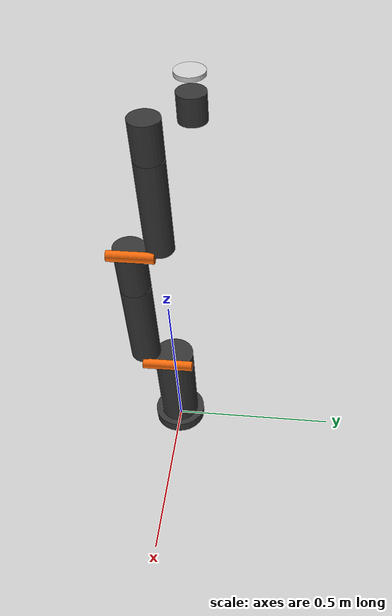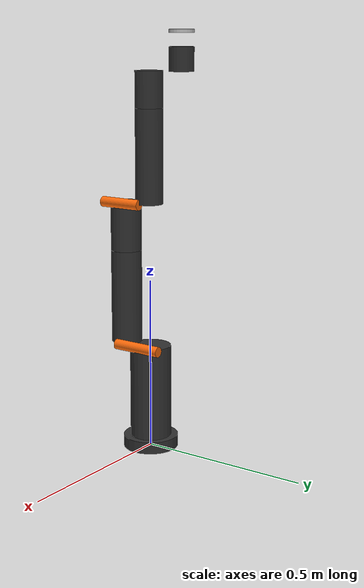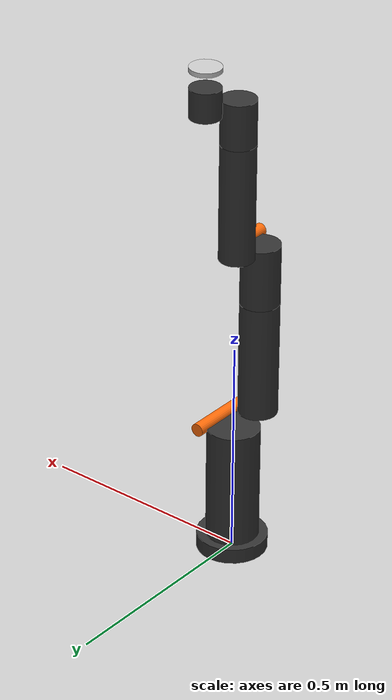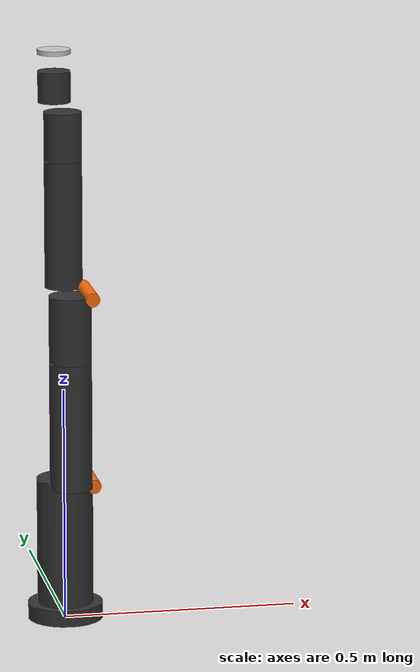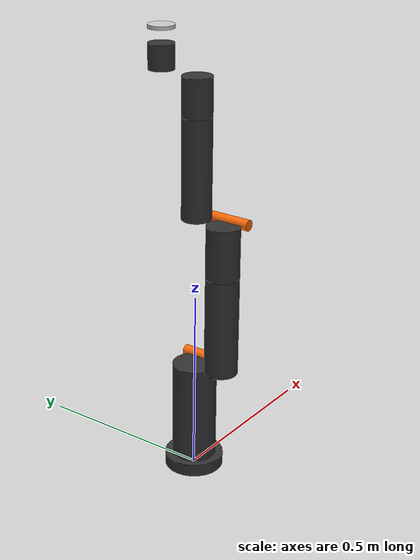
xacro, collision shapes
<?xml version="1.0"?>
<robot xmlns:xacro="http://wiki.ros.org/xacro" name="kr810">

  <!-- Import kr810 macro -->
  <xacro:include filename="$(find kr_robot_description)/kr810/urdf/kr810_description.urdf.xacro"/>
  <xacro:kr810_description/>

  <!-- Import r6bot ros2_control description -->
  <xacro:include filename="$(find kr_robot_driver)/ros2_control/kr810.ros2_control.xacro" />
  <xacro:kr810_ros2_control name="kr810"/>

</robot>

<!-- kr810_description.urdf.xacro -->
<robot name="kr2_robot_a810" model="a810" model-revision="051020-0" mechanical-revision="5" features="TIO" xmlns:xacro="http://www.ros.org/wiki/xacro">

  <xacro:macro name="kr810_description">

  <!-- materials -->

  <material name="gray">
    <color rgba="0.5 0.5 0.5 1.0"/>
  </material>

  <material name="dark_gray">
    <color rgba="0.3 0.3 0.3 1.0"/>
  </material>

  <material name="light_gray">
    <color rgba="0.7 0.7 0.7 1.0"/>
  </material>

  <material name="black">
    <color rgba="0.1 0.1 0.1 1.0"/>
  </material>

  <material name="orange">
    <color rgba="${255/255} ${108/255} ${10/255} 1.0"/>
  </material>

  <!-- globals -->
  <xacro:property name="joints_damping" value="0.1" />

  <!-- links -->

  <!-- all dimensions should be input as measured in the drawing in mm and
       converted to real dimensions by multiplying with the scale property -->
  <xacro:property name="scale" value="0.001" />

  <xacro:property name="pi_per_deg" value="${pi / 180.0}" />

  <xacro:property name="mass_multiplier" value="1.0" />

  <xacro:macro name="cylinder_inertia" params="mass radius length">
      <inertia ixx="0.003"
               ixy="0.0"
               ixz="0.0"
               iyy="0.003"
               iyz="0.0"
               izz="0.003"/>

  </xacro:macro>

  <xacro:macro name="visual_and_collision" params="xyz material rpy *geometry">
      <visual>
        <origin rpy="${rpy}" xyz="${xyz}" />
        <geometry>
          <xacro:insert_block name="geometry" />
        </geometry>
        <material name="${material}" />
      </visual>
      <collision>
        <origin rpy="${rpy}" xyz="${xyz}" />
        <geometry>
          <xacro:insert_block name="geometry" />
        </geometry>
      </collision>
  </xacro:macro>

  <link name="world"/>

  <link name="base">

    <xacro:property name="base_outer_radius" value="${ 80 * scale}" />
    <xacro:property name="base_inner_radius" value="${ 60 * scale}" />
    <xacro:property name="base_outer_height" value="${ 20 * scale}" />
    <xacro:property name="base_inner_height" value="${ 15 * scale}" />

    <xacro:property name="base_mass"         value="0.6" />
    <inertial>
      <origin rpy="0 0 0" xyz="0 0 0"/>
      <mass value="${base_mass*mass_multiplier}"/>
      <xacro:cylinder_inertia mass="${base_mass}"
                              radius="${base_outer_radius}"
                              length="${base_inner_height+base_outer_height}" />
    </inertial>

    <visual>
        <origin xyz="0 0 0" rpy="0 0 0" />
        <geometry>
          <mesh filename="package://kr_robot_description/kr810/meshes/a810/a810_Base.stl" scale="0.001 0.001 0.001"/>
        </geometry>
        <material name="">
          <color rgba="0.2 0.2 0.2 1" />
        </material>
    </visual>

    <collision>
        <origin xyz="0 0 ${(base_outer_height + base_inner_height)/2}" rpy="0 0 0" />
        <geometry>
          <cylinder length="${base_outer_height + base_inner_height}" radius="${base_outer_radius}"/>
        </geometry>
    </collision>

  </link>

  <link name="link1">

    <xacro:property name="link1_radius" value="${ 60 * scale}" />
    <xacro:property name="link1_length" value="${ 308.7 * scale - 35 * scale}" />
    <xacro:property name="link1_hinge_length"  value="${  130   * scale}"   />
    <xacro:property name="link1_hinge_radius"  value="${  57.5 * scale}" />

    <xacro:property name="link1_mass"   value="4.58" />

    <inertial>
      <origin rpy="0 0 0" xyz="0 0 ${link1_length/2}"/>
      <mass value="${link1_mass*mass_multiplier}"/>
            <xacro:cylinder_inertia mass="${link1_mass}"
                                    radius="${link1_radius}"
                                    length="${link1_length}" />
    </inertial>

    <visual>
        <origin xyz="0 0 0.169" rpy="0 0 0" />
        <geometry>
          <mesh filename="package://kr_robot_description/kr810/meshes/a810/a810_Link2.stl" scale="0.001 0.001 0.001"/>
        </geometry>
        <material name="">
          <color rgba="0.2 0.2 0.2 1" />
        </material>
    </visual>

    <collision>
        <origin xyz="0 0 ${link1_length/2}" rpy="0 0 0" />
        <geometry>
          <cylinder length="${link1_length}" radius="${link1_radius}"/>
        </geometry>
    </collision>

  </link>

  <link name="linkJ2">

    <xacro:property name="cylinderJ2_radius"   value="${15 * scale}"   />
    <xacro:property name="cylinderJ2_height"   value="${120 * scale}"   />
    <xacro:property name="linkJ2_mass"         value="6.1"   />

    <xacro:visual_and_collision rpy="${pi/2} 0 0"
                                xyz="0 ${-10 * scale} 0"
                                material="orange">
      <cylinder length="${cylinderJ2_height * 1.25}" radius="${cylinderJ2_radius}"/>
    </xacro:visual_and_collision>

    <inertial>
      <origin rpy="0 0 0" xyz="0 0 0"/>
      <mass value="${linkJ2_mass*mass_multiplier}"/>
      <xacro:cylinder_inertia mass="${linkJ2_mass}"
                              radius="${cylinderJ2_radius}"
                              length="${cylinderJ2_height}" />
    </inertial>

  </link>

  <link name="link2">

    <xacro:property name="link2_radius"   value="${ 45.0 * scale}"   />
    <xacro:property name="link2_length"   value="${ 274.0 * scale}"   />

    <xacro:property name="link2_mass"     value="0.43"   />

    <inertial>
      <origin rpy="0 0 0" xyz="0 0 ${ 175.0 * scale }"/>
      <mass value="${link2_mass*mass_multiplier}"/>
      <xacro:cylinder_inertia mass="${link2_mass}"
                              radius="${link2_radius}"
                              length="${link2_length}" />
    </inertial>

    <visual>
        <origin xyz="0.049 0 0" rpy="-${pi/2} 0 -${pi/2}" />
        <geometry>
          <mesh filename="package://kr_robot_description/kr810/meshes/a810/a810_Link3.stl" scale="0.001 0.001 0.001"/>
        </geometry>
        <material name="">
          <color rgba="0.2 0.2 0.2 1" />
        </material>
    </visual>

    <collision>
        <origin xyz="0 0 ${link2_length/2}" rpy="0 0 0" />
        <geometry>
          <cylinder length="${link2_length}" radius="${link2_radius}"/>
        </geometry>
    </collision>

  </link>

  <link name="link3">

    <xacro:property name="link3_radius"        value="${  45.0 * scale}" />
    <xacro:property name="link3_length"        value="${ 142.9 * scale}" />
    <xacro:property name="link3_hinge_length"  value="${ 120.0 * scale}" />
    <xacro:property name="link3_hinge_radius"  value="${  45.0 * scale}" />
    <xacro:property name="link3_hinge_yoffset" value="${   6.5 * scale}" />

    <xacro:property name="link3_mass"     value="2.9" />

    <inertial>
      <origin rpy="0 0 0" xyz="0 0 0"/>
      <mass value="${link3_mass*mass_multiplier}"/>
      <xacro:cylinder_inertia mass="${link3_mass}"
                              radius="${link3_radius}"
                              length="${link3_length}" />
    </inertial>

    <visual>
        <origin xyz="-0.05 -0.0 0.315" rpy="${pi/2} 0 -${pi/2}" />
        <geometry>
          <mesh filename="package://kr_robot_description/kr810/meshes/a810/a810_Link4.stl" scale="0.001 0.001 0.001"/>
        </geometry>
        <material name="">
          <color rgba="0.2 0.2 0.2 1" />
        </material>
    </visual>

    <collision>
        <origin xyz="0 0 ${link3_length/2}" rpy="0 0 0" />
        <geometry>
          <cylinder length="${link3_length}" radius="${link3_radius}"/>
        </geometry>
    </collision>

  </link>

  <link name="linkJ4">

    <xacro:property name="cylinderJ4_radius"   value="${15.0 * scale}"   />
    <xacro:property name="cylinderJ4_height"   value="${100 * scale}"   />
    <xacro:property name="linkJ4_mass"         value="3.8"   />

    <xacro:visual_and_collision rpy="${pi/2} 0 0"
                                xyz="0 ${13 * scale} 0"
                                material="orange">
      <cylinder length="${cylinderJ4_height * 1.29}" radius="${cylinderJ4_radius}"/>
    </xacro:visual_and_collision>

    <inertial>
      <origin rpy="0 0 0" xyz="0 ${6.5 * scale} 0"/>
      <mass value="${linkJ4_mass*mass_multiplier}"/>
      <xacro:cylinder_inertia mass="${linkJ4_mass}"
                              radius="${cylinderJ4_radius}"
                              length="${cylinderJ4_height}" />
    </inertial>

  </link>

  <link name="link4">

    <xacro:property name="link4_radius"   value="${  40.0 * scale}" />
    <xacro:property name="link4_length"   value="${ 271.0 * scale}" />

    <xacro:property name="link4_mass"     value="0.33" />

    <inertial>
      <origin rpy="0 0 0" xyz="0 0 ${ 168.0 * scale}"/>
      <mass value="${link4_mass*mass_multiplier}"/>
      <xacro:cylinder_inertia mass="${link4_mass}"
                              radius="${link4_radius}"
                              length="${link4_length}" />
    </inertial>

    <visual>
        <origin xyz="0.04 0.0005 0.0" rpy="-${pi/2} 0 ${pi/2}" />
        <geometry>
          <mesh filename="package://kr_robot_description/kr810/meshes/a810/a810_Link5.stl" scale="0.001 0.001 0.001"/>
        </geometry>
        <material name="">
          <color rgba="0.2 0.2 0.2 1" />
        </material>
    </visual>

    <collision>
        <origin xyz="0 0 ${link4_length/2}" rpy="0 0 0" />
        <geometry>
          <cylinder length="${link4_length}" radius="${link4_radius}"/>
        </geometry>
    </collision>

  </link>

  <link name="link5">

    <xacro:property name="link5_radius"   value="${  40.0 * scale}" />
    <xacro:property name="link5_length"   value="${ 103.5 * scale}" />

    <xacro:property name="link5_mass"     value="1.7" />

    <inertial>
      <origin rpy="0 0 0" xyz="0 0 0"/>
      <mass value="${link5_mass*mass_multiplier}"/>
      <xacro:cylinder_inertia mass="${link5_mass}"
                              radius="${link5_radius}"
                              length="${link5_length}" />
    </inertial>

    <visual>
        <origin xyz="0.0 0.002 0.1035" rpy="0 0 -${pi/2}" />
        <geometry>
          <mesh filename="package://kr_robot_description/kr810/meshes/a810/a810_Link6.stl" scale="0.001 0.001 0.001"/>
        </geometry>
        <material name="">
          <color rgba="0.2 0.2 0.2 1" />
        </material>
    </visual>

    <collision>
        <origin xyz="0 0 ${link5_length/2}" rpy="0 0 0" />
        <geometry>
          <cylinder length="${link5_length}" radius="${link5_radius}"/>
        </geometry>
    </collision>

  </link>

  <link name="linkJ6">

    <xacro:property name="cylinderJ6_radius"   value="${ 15.0 * scale}"   />
    <xacro:property name="cylinderJ6_height"   value="${ 110.0 * scale}"  />
    <xacro:property name="linkJ6_mass"         value="1.8"   />
    <inertial>
      <origin rpy="0 0 0" xyz="0 ${4.0 * scale} 0"/>
      <mass value="${linkJ6_mass*mass_multiplier}"/>
      <xacro:cylinder_inertia mass="${linkJ6_mass}"
                              radius="${cylinderJ6_radius}"
                              length="${cylinderJ6_height}" />
    </inertial>

  </link>

  <link name="link6">
    <xacro:property name="link6_radius"   value="${ 35.0 * scale}" />
    <xacro:property name="link6_length"   value="${ 66.5 * scale}" />
    <xacro:property name="link6_mass"     value="1.8" />
    <inertial>
      <origin rpy="0 0 0" xyz="0 0 ${4.0 * scale}"/>
      <mass value="${link6_mass*mass_multiplier}"/>
      <xacro:cylinder_inertia mass="${link6_mass}"
                              radius="${link6_radius}"
                              length="${link6_length}" />
    </inertial>
    <visual>
        <origin xyz="0.0 0.0 0.0" rpy="0 0 0" />
        <geometry>
          <mesh filename="package://kr_robot_description/kr810/meshes/a810/a810_Link7.stl" scale="0.001 0.001 0.001"/>
        </geometry>
        <material name="">
          <color rgba="0.2 0.2 0.2 1" />
        </material>
    </visual>

    <collision>
        <origin xyz="0 0 ${link6_length/2}" rpy="0 0 0" />
        <geometry>
          <cylinder length="${link6_length}" radius="${link6_radius}"/>
        </geometry>
    </collision>
  </link>

  <link name="end_effector">

    <xacro:property name="end_effector_outer_radius" value="${ 35.5 * scale}" />
    <xacro:property name="end_effector_outer_length" value="${ 5.0 * scale}" />
    <xacro:property name="end_effector_inner_radius" value="${ 22.5 * scale}" />
    <xacro:property name="end_effector_inner_length" value="${ 5.0   * scale}" />

    <xacro:property name="end_effector_mass"         value="0.56"   />
    <visual>
        <origin xyz="0.0 -0.0 0.0" rpy="0 0 0" />
        <geometry>
          <mesh filename="package://kr_robot_description/kr810/meshes/a810/a810_ToolIO.stl" scale="0.001 0.001 0.001"/>
        </geometry>
        <material name="">
          <color rgba="0.8 0.8 0.8 1" />
        </material>
    </visual>

    <collision>
        <origin xyz="0 0 0" rpy="0 0 0" />
        <geometry>
          <cylinder length="${end_effector_outer_length + end_effector_inner_length}" radius="${end_effector_outer_radius}"/>
        </geometry>
    </collision>

    <inertial>
      <origin rpy="0 0 0" xyz="0 0 ${-19.7 * scale}"/>
      <mass value="${end_effector_mass*mass_multiplier}"/>
      <xacro:cylinder_inertia mass="${end_effector_mass}"
                              radius="${end_effector_outer_radius}"
                              length="${end_effector_outer_length + end_effector_inner_length}" />
    </inertial>
  </link>

  <!-- joints -->
  <joint name="dummy" type="fixed">
    <parent link="world"/>
    <child link="base"/>
  </joint>

  <joint name="joint_1" type="revolute">
    <parent link="base"/>
    <child link="link1"/>
    <origin rpy="0 0 0" xyz="0 0 ${base_inner_height + base_outer_height}"/>

    <axis xyz="0 0 1"/>

    <dynamics damping="${joints_damping}"/>
    <limit effort="204" velocity="${225/180*pi}" lower="-6.11" upper="6.11"/>
    <!-- Position limits: -350° to +350° (actual -360°, with 10° safety margin) -->

  </joint>

  <xacro:property name="joint1_xoffset"  value="${  50.0 * scale}" />
  <xacro:property name="joint1_yoffset"  value="${   0.0 * scale}" />
  <xacro:property name="joint1_zoffset"  value="${ 308.7 * scale - 35 * scale}" />

  <joint name="joint_2" type="revolute">
    <parent link="link1"/>
    <child link="linkJ2"/>
    <origin rpy="0 0 0" xyz="${joint1_xoffset} ${joint1_yoffset} ${joint1_zoffset}"/>
    <axis xyz="0 1 0"/>

    <dynamics damping="${joints_damping}"/>
    <limit effort="204" velocity="${225/180*pi}" lower="-2.97" upper="2.97"/>
    <!-- Position limits: -170° to +170° (actual -180°, with 10° safety margin) -->

  </joint>

  <xacro:property name="jointPL2_xoffset"  value="${  -50.0 * scale}" />
  <xacro:property name="jointPL2_yoffset"  value="${  -85.7 * scale}" />

  <joint name="jointPL2" type="fixed">
    <parent link="linkJ2"/>
    <child link="link2"/>
    <origin rpy="0 0 0" xyz="${jointPL2_xoffset} ${jointPL2_yoffset} 0"/>
  </joint>

  <joint name="joint_3" type="revolute">
    <parent link="link2"/>
    <child link="link3"/>
    <origin rpy="0 0 0" xyz="0 0 ${link2_length}"/>
    <axis xyz="0 0 1"/>

    <dynamics damping="${joints_damping}"/>
    <limit effort="85" velocity="${225/180*pi}" lower="-6.11" upper="6.11"/>
    <!-- Position limits: -350° to +350° (actual -360°, with 10° safety margin) -->

  </joint>

  <xacro:property name="joint3_xoffset"  value="${ 40.0 * scale}" />
  <xacro:property name="joint3_yoffset"  value="${ 0.0 * scale}" />
  <xacro:property name="joint3_zoffset"  value="${ 142.9 * scale}" />

  <joint name="joint_4" type="revolute">
    <parent link="link3"/>
    <child link="linkJ4"/>
    <origin rpy="0 0 0" xyz="${joint3_xoffset} ${joint3_yoffset} ${joint3_zoffset}"/>
    <axis xyz="0 1 0"/>

    <dynamics damping="${joints_damping}"/>
    <limit effort="85" velocity="${225/180*pi}" lower="-2.97" upper="2.97"/>
    <!-- Position limits: -170° to +170° (actual -180°, with 10° safety margin) - CRITICAL! -->

  </joint>

  <xacro:property name="jointPL4_xoffset"  value="${ -40.0 * scale}" />
  <xacro:property name="jointPL4_yoffset"  value="${ 84.05 * scale}" />
  <xacro:property name="jointPL4_zoffset"  value="${ 0.0 * scale}" />

  <joint name="jointPL4" type="fixed">
    <parent link="linkJ4"/>
    <child link="link4"/>
    <origin rpy="0 0 0" xyz="${jointPL4_xoffset} ${jointPL4_yoffset} ${jointPL4_zoffset}"/>
  </joint>

  <joint name="joint_5" type="revolute">
    <parent link="link4"/>
    <child link="link5"/>
    <origin rpy="0 0 0" xyz="0 0 ${link4_length}"/>
    <axis xyz="0 0 1"/>

    <dynamics damping="${joints_damping}"/>
    <limit effort="51" velocity="${225/180*pi}" lower="-6.11" upper="6.11"/>
    <!-- Position limits: -350° to +350° (actual -360°, with 10° safety margin) -->

  </joint>

  <xacro:property name="joint5_zoffset"  value="${ 103.5 * scale}" />

  <joint name="joint_6" type="revolute">
    <parent link="link5"/>
    <child link="linkJ6"/>
    <origin rpy="0 0 0" xyz="0 0 ${joint5_zoffset}"/>
    <axis xyz="0 1 0"/>

    <dynamics damping="${joints_damping}"/>
    <limit effort="51" velocity="${225/180*pi}" lower="-6.11" upper="6.11"/>
    <!-- Position limits: -350° to +350° (actual -360°, with 10° safety margin) -->

  </joint>

  <xacro:property name="jointPL6_yoffset"  value="${ 111.0 * scale}" />
  <joint name="jointPL6" type="fixed">
    <parent link="linkJ6"/>
    <child link="link6"/>
    <origin rpy="0 0 0" xyz="0 ${jointPL6_yoffset} 0"/>
  </joint>

  <xacro:property name="joint6_zoffset"  value="${ 108.0 * scale}" />

  <joint name="joint_7" type="revolute">
    <parent link="link6"/>
    <child link="end_effector"/>
    <origin rpy="0 0 0" xyz="0 0 ${joint6_zoffset}"/>
    <axis xyz="0 0 1"/>

    <dynamics damping="${joints_damping}"/>

    <limit effort="51" velocity="${225/180*pi}" lower="-6.11" upper="6.11"/>
    <!-- Position limits: -350° to +350° (actual -360°, with 10° safety margin) -->

  </joint>

  <!-- gazebo -->
  <!-- Used for fixing robot to Gazebo 'base_link' -->

  <!-- Transmission mappings -->

  </xacro:macro>

</robot>
